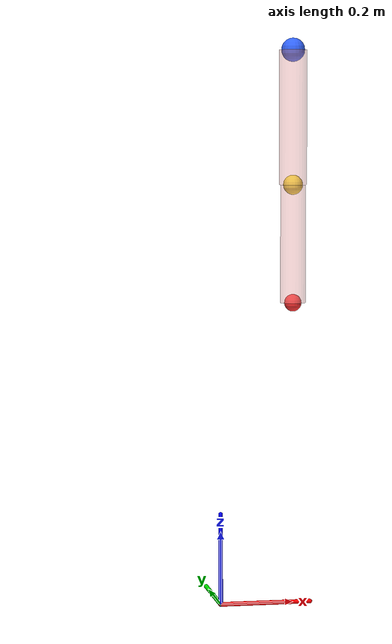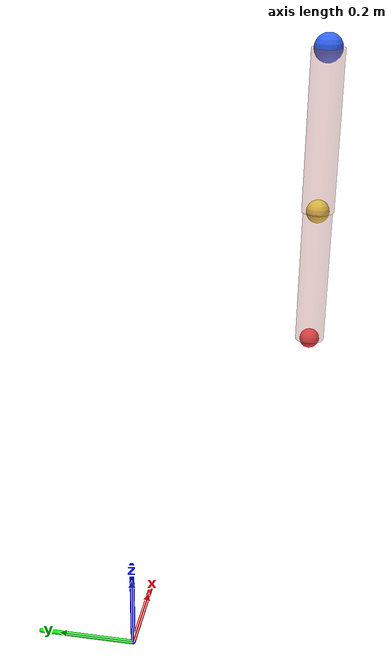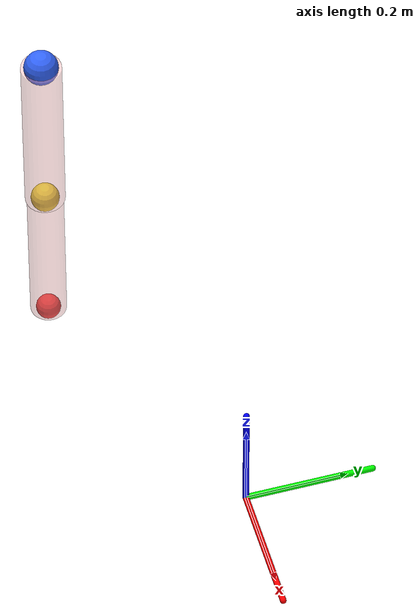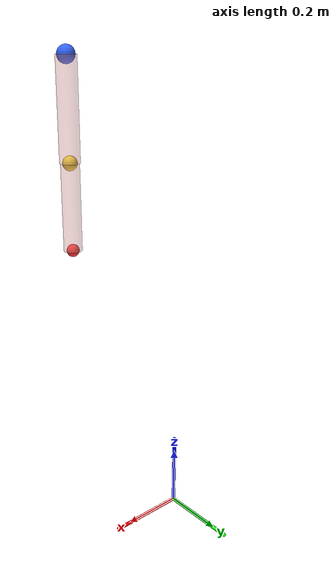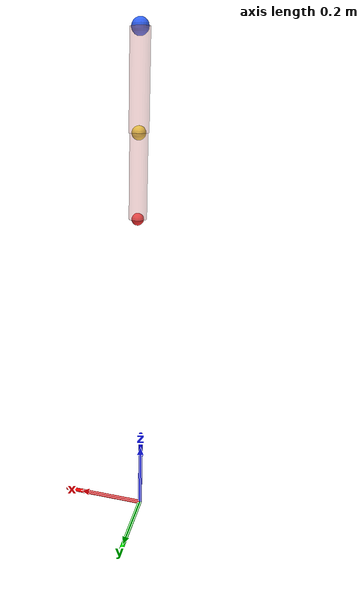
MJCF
<mujoco model="cylinder_arm">

    <default>
        <default class="human_arm">
            <geom type="capsule" rgba="1 0.6 0.6 0.35" density="10" solref="0.05 1" solimp="0.8 0.9 0.001" friction="0.6 0.1 0.1"/>
            <joint damping="2" armature="0.02" solimplimit="0.998 0.998 0.001" solreflimit="0.004 1"/>
            <default class="limb_collision">
                <geom group="0" contype="2" conaffinity="1"
                    condim="1"
                    friction="0 0 0"
                    solref="0.06 1" solimp="0.7 0.9 0.001"
                    margin="0.01" gap="0.002"/>
            </default>
            <default class="vis_collision">
                <geom group="0" contype="0" conaffinity="0"/>
            </default>
        </default>
    </default>

  <worldbody>
    <!-- World-frame axes at origin: X=red, Y=green, Z=blue -->
    <body name="origin_axes" pos="0 0 0" gravcomp="1">
        <!-- Make them visual-only -->
        <!-- red -->
        <geom name="axis_x" type="capsule"
                fromto="0 0 0   0.25 0 0"
                size="0.006"
                rgba="1 0 0 1"
                contype="0" conaffinity="0"/>
        <!-- green -->
        <geom name="axis_y" type="capsule"
                fromto="0 0 0   0 0.25 0"
                size="0.006"
                rgba="0 1 0 1"
                contype="0" conaffinity="0"/>
        <!-- blue -->
        <geom name="axis_z" type="capsule"
                fromto="0 0 0   0 0 0.25"
                size="0.006"
                rgba="0 0 1 1"
                contype="0" conaffinity="0"/>
    </body>
    <!-- set initial position here -->
    <body name="arm_carrier" pos="0.12 -0.4 1.50" gravcomp="1">
      <!-- planar motion joints -->
      <joint name="arm_tx" type="slide" axis="1 0 0" range="-2 2"/>
      <joint name="arm_ty" type="slide" axis="0 1 0" range="-2 2"/>

        <body name="arm_root" pos="0 0 0" gravcomp="1" childclass="human_arm">
            <inertial pos="0 0 0" mass="1e-3" diaginertia="1e-6 1e-6 1e-6"/>

            <!-- whole-arm base rotation (like shoulder/torso swivel) -->
            <body name="shoulder_base_body" pos="0 0 0" gravcomp="1">
                <joint name="arm_shoulder_base" type="hinge" axis="0 0 1" range="-1.57 1.57"/>
                <geom name="vis_shoulder_base" type="sphere" size="0.03" mass="0.5" rgba="0.2 0.4 1.0 1" class="vis_collision"/>

                <!-- Shoulder yaw (Blue) -->
                <body name="shoulder_yaw_body" pos="0 0 0" gravcomp="1">
                    <joint name="arm_shoulder_yaw" type="hinge" axis="0 0 1"
                        range="-1.570796 1.570796"/>

                    <!-- Mass/inertia carrier for this joint body -->
                    <geom name="vis_shoulder_yaw" type="sphere" size="0.028" mass="1" rgba="0.2 0.4 1.0 1" class="vis_collision"/>

                    <!-- Shoulder pitch -->
                    <body name="shoulder_pitch_body" pos="0 0 0" gravcomp="1">
                    <joint name="arm_shoulder_pitch" type="hinge" axis="0 1 0"
                            range="-1.570796 1.570796"/>

                    <!-- Mass/inertia carrier for this joint body -->
                    <geom name="vis_shoulder_pitch" type="sphere" mass="1" size="0.028" rgba="0.2 0.4 1.0 1" class="vis_collision"/>

                    <!-- Upper arm -->
                    <body name="upperarm" pos="0 0 0" gravcomp="1">
                        <geom name="upperarm_geom" type="cylinder" fromto="0 0 0  0 0 -0.34" size="0.035" class="limb_collision"/>

                        <!-- Elbow -->
                        <body name="forearm" pos="0 0 -0.34" gravcomp="1">
                            <joint name="arm_elbow" type="hinge" axis="0 1 0" range="0 2.530727"/>
                            <geom name="forearm_geom" type="cylinder" fromto="0 0 0  0 0 -0.30" size="0.032" class="limb_collision"/>
                            <!-- Elbow visual (Yellow) -->
                            <geom name="vis_elbow" type="sphere" size="0.025" rgba="1.0 0.9 0.2 1" class="vis_collision"/>
                            <!-- Wrist visual (Red) -->
                            <body name="wrist" pos="0 0 -0.30" gravcomp="1">
                                <geom name="vis_wrist" type="sphere" size="0.022" rgba="1.0 0.2 0.2 1" class="vis_collision"/>
                            </body>
                        </body>
                    </body>
                    </body>
                </body>
            </body>
        </body>
    </body>
  </worldbody>

  <actuator>
    <motor name="act_arm_shoulder_base" joint="arm_shoulder_base" gear="10"/>
    <motor name="act_arm_shoulder_yaw"    joint="arm_shoulder_yaw" gear="10"/>
    <motor name="act_arm_shoulder_pitch" joint="arm_shoulder_pitch" gear="10"/>
    <motor name="act_arm_elbow"          joint="arm_elbow" gear="10"/>
  </actuator>
</mujoco>
